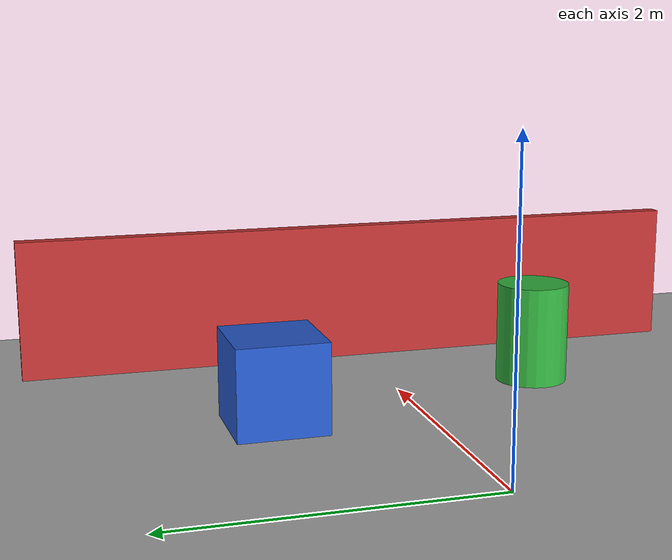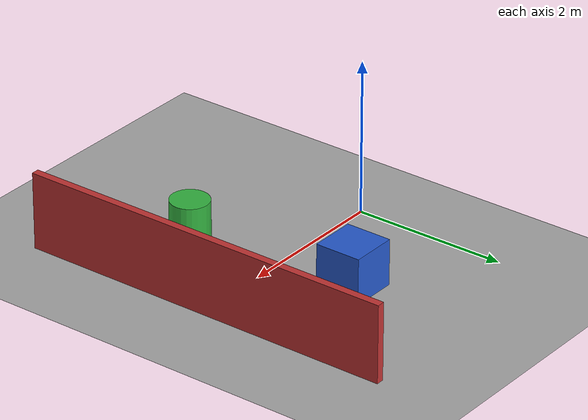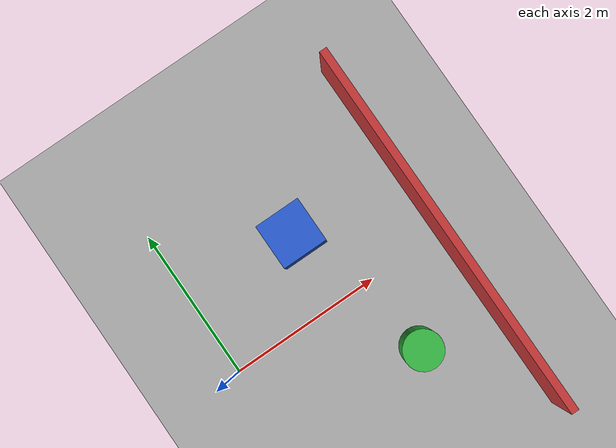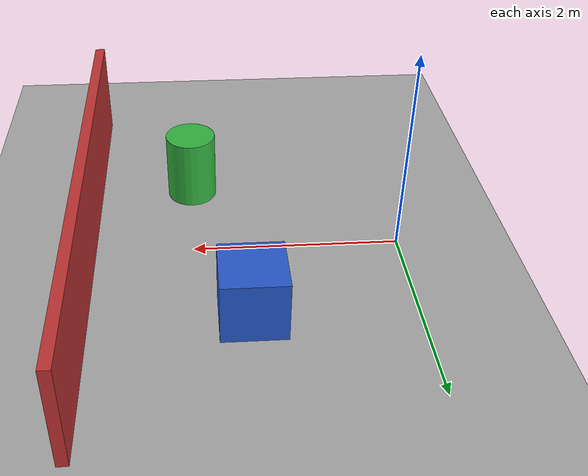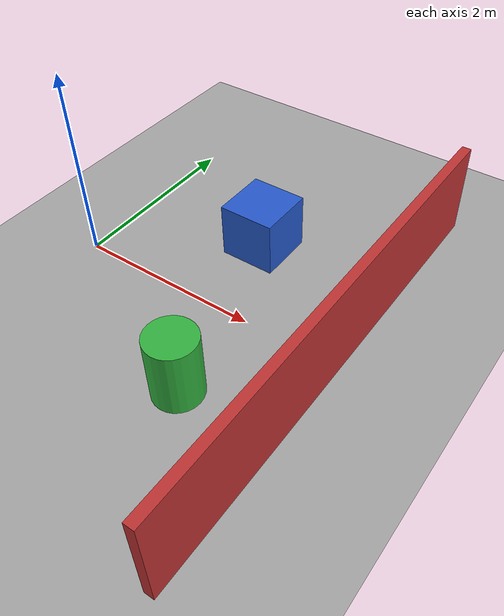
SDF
<?xml version="1.0"?>
<sdf version="1.9">
  <world name="sensor_test">
    <physics name="1ms" type="ignored">
      <max_step_size>0.001</max_step_size>
      <real_time_factor>1.0</real_time_factor>
    </physics>
    <plugin filename="gz-sim-physics-system" name="gz::sim::systems::Physics"/>
    <plugin filename="gz-sim-user-commands-system" name="gz::sim::systems::UserCommands"/>
    <plugin filename="gz-sim-scene-broadcaster-system" name="gz::sim::systems::SceneBroadcaster"/>
    <plugin filename="gz-sim-sensors-system" name="gz::sim::systems::Sensors">
      <render_engine>ogre2</render_engine>
    </plugin>
    <plugin filename="gz-sim-imu-system" name="gz::sim::systems::Imu"/>

    <light type="directional" name="sun">
      <pose>0 0 10 0 0 0</pose>
      <cast_shadows>true</cast_shadows>
      <diffuse>0.8 0.8 0.8 1</diffuse>
      <specular>0.2 0.2 0.2 1</specular>
      <direction>-0.5 0.1 -0.9</direction>
    </light>

    <model name="ground_plane">
      <static>true</static>
      <link name="link">
        <collision name="collision">
          <geometry><plane><normal>0 0 1</normal><size>20 20</size></plane></geometry>
        </collision>
        <visual name="visual">
          <geometry><plane><normal>0 0 1</normal><size>20 20</size></plane></geometry>
          <material><ambient>0.65 0.65 0.65 1</ambient><diffuse>0.65 0.65 0.65 1</diffuse></material>
        </visual>
      </link>
    </model>

    <!-- Known targets from the default spawn at (0, 0): front wall x=3 m,
         left box center=(1.5, 1.0), right cylinder center=(2.0, -1.0). -->
    <model name="front_wall">
      <static>true</static>
      <pose>3.0 0 0.5 0 0 0</pose>
      <link name="link">
        <collision name="collision"><geometry><box><size>0.10 5.0 1.0</size></box></geometry></collision>
        <visual name="visual">
          <geometry><box><size>0.10 5.0 1.0</size></box></geometry>
          <material><ambient>0.75 0.20 0.20 1</ambient><diffuse>0.75 0.20 0.20 1</diffuse></material>
        </visual>
      </link>
    </model>
    <model name="left_box">
      <static>true</static>
      <pose>1.5 1.0 0.30 0 0 0</pose>
      <link name="link">
        <collision name="collision"><geometry><box><size>0.60 0.60 0.60</size></box></geometry></collision>
        <visual name="visual">
          <geometry><box><size>0.60 0.60 0.60</size></box></geometry>
          <material><ambient>0.15 0.35 0.80 1</ambient><diffuse>0.15 0.35 0.80 1</diffuse></material>
        </visual>
      </link>
    </model>
    <model name="right_cylinder">
      <static>true</static>
      <pose>2.0 -1.0 0.35 0 0 0</pose>
      <link name="link">
        <collision name="collision"><geometry><cylinder><radius>0.25</radius><length>0.70</length></cylinder></geometry></collision>
        <visual name="visual">
          <geometry><cylinder><radius>0.25</radius><length>0.70</length></cylinder></geometry>
          <material><ambient>0.20 0.70 0.25 1</ambient><diffuse>0.20 0.70 0.25 1</diffuse></material>
        </visual>
      </link>
    </model>
  </world>
</sdf>
